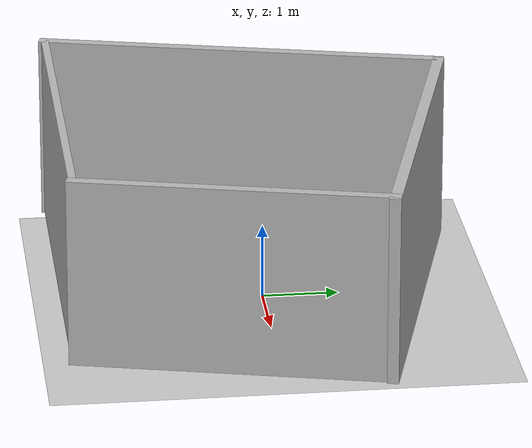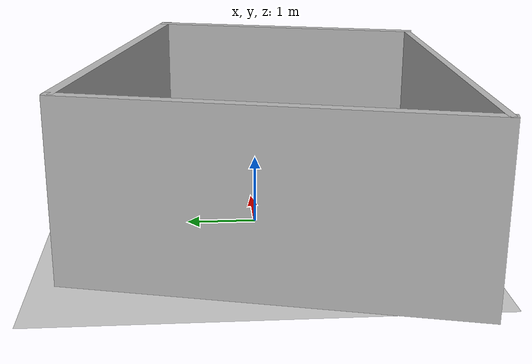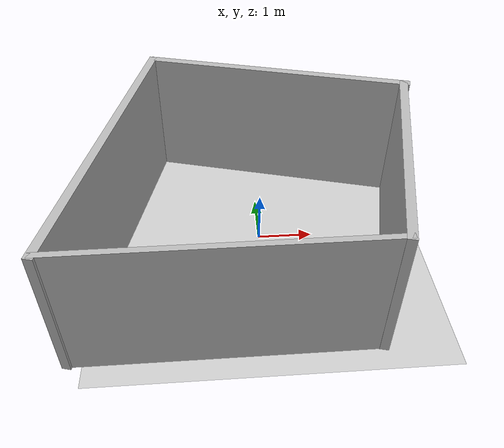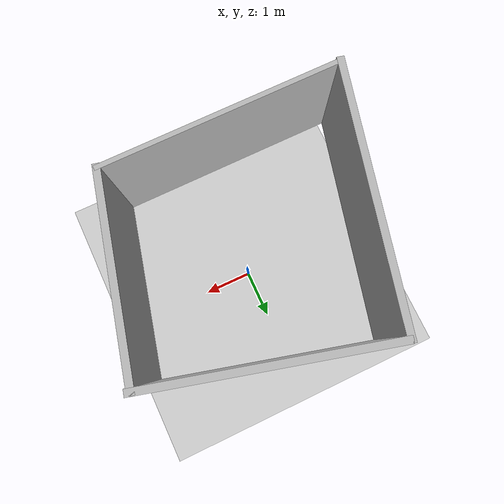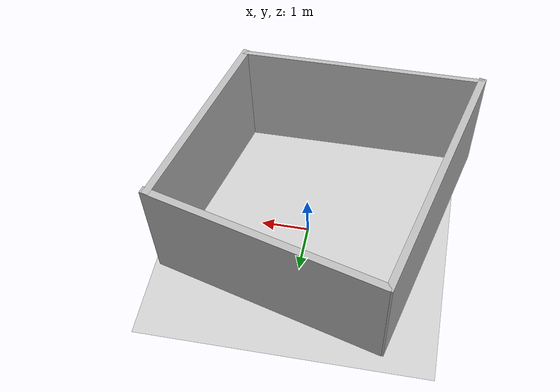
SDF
<?xml version="1.0" ?>
<sdf version="1.4">
  <world name="default">

    <include>
      <uri>model://ground_plane_textured</uri>
    </include>

    <!-- Global light source -->
    <include>
      <uri>model://sun</uri>
    </include>

    <include>
      <uri>model://unevenFourWallTextured</uri>
      <pose>-0.2 0.0 0.0 0.0 0.0 0.0</pose>
    </include>

    <!-- Focus camera on tall pendulum -->
    <gui fullscreen='0'>
      <camera name='user_camera'>
        <pose>-0.241862 -0.045901 11.828028 0.000000 1.570796 0.0</pose>
        <view_controller>orbit</view_controller>
      </camera>
    </gui>

  </world>
</sdf>

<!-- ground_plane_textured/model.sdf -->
<sdf version="1.5">
  <model name="ground_plane_textured">
    <static>true</static>
    <link name="link">
      <collision name="collision">
        <geometry>
          <plane>
            <normal>0 0 1</normal>
            <size>6 6</size>
          </plane>
        </geometry>
        <surface>
          <contact>
             <collide_bitmask>0xffff</collide_bitmask>
          </contact>
          <friction>
            <ode>
              <mu>100</mu>
              <mu2>50</mu2>
            </ode>
          </friction>
        </surface>
      </collision>
      <visual name="visual">
        <cast_shadows>false</cast_shadows>
        <geometry>
          <plane>
            <normal>0 0 1</normal>
            <size>6 6</size>
          </plane>
        </geometry>

        <material>
          <script>
            <uri>model://ground_plane_textured/materials/scripts/byu.material</uri>
            <name>BYU/ground</name>
          </script>
        </material>

      </visual>
    </link>
  </model>
</sdf>

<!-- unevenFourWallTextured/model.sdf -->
<sdf version='1.6'>
  <model name='unevenFourWallTextured'>
    <pose frame=''>1.00675 0.586158 0 0 -0 0</pose>
    <link name='Wall_12'>
      <collision name='Wall_12_Collision'>
        <geometry>
          <box>
            <size>5.1 0.1 2.5</size>
          </box>
        </geometry>
        <pose frame=''>0 0 1.25 0 -0 0</pose>
      </collision>
      <visual name='Wall_12_Visual'>
        <pose frame=''>0 0 1.25 0 -0 0</pose>
        <geometry>
          <box>
            <size>5.1 0.1 2.5</size>
          </box>
        </geometry>
        <material>
          <script>
            <uri>model://unevenFourWallTextured/materials/scripts/cardboard.material</uri>
            <name>cardboard</name>
          </script>
        </material>
        <meta>
          <layer>0</layer>
        </meta>
      </visual>
      <pose frame=''>-0.506749 -2.58616 0 0 -0 0</pose>
    </link>
    <link name='Wall_15'>
      <collision name='Wall_15_Collision'>
        <geometry>
          <box>
            <size>4.18493 0.15 2.5</size>
          </box>
        </geometry>
        <pose frame=''>0 0 1.25 0 -0 0</pose>
      </collision>
      <visual name='Wall_15_Visual'>
        <pose frame=''>0 0 1.25 0 -0 0</pose>
        <geometry>
          <box>
            <size>4.18493 0.15 2.5</size>
          </box>
        </geometry>
        <material>
          <script>
            <uri>model://unevenFourWallTextured/materials/scripts/cardboard2.material</uri>
            <name>cardboard2</name>
          </script>
        </material>
        <meta>
          <layer>0</layer>
        </meta>
      </visual>
      <pose frame=''>2.47929 -0.628116 0 0 -0 1.32749</pose>
    </link>
    <link name='Wall_16'>
      <collision name='Wall_16_Collision'>
        <geometry>
          <box>
            <size>5 0.15 2.5</size>
          </box>
        </geometry>
        <pose frame=''>0 0 1.25 0 -0 0</pose>
      </collision>
      <visual name='Wall_16_Visual'>
        <pose frame=''>0 0 1.25 0 -0 0</pose>
        <geometry>
          <box>
            <size>5 0.15 2.5</size>
          </box>
        </geometry>
        <material>
          <script>
            <uri>model://unevenFourWallTextured/materials/scripts/cardboard3.material</uri>
            <name>cardboard3</name>
          </script>
        </material>
        <meta>
          <layer>0</layer>
        </meta>
      </visual>
      <pose frame=''>0.663419 1.95756 0 0 -0 2.87979</pose>
    </link>
    <link name='Wall_17'>
      <collision name='Wall_17_Collision'>
        <geometry>
          <box>
            <size>5.47918 0.15 2.5</size>
          </box>
        </geometry>
        <pose frame=''>0 0 1.25 0 -0 0</pose>
      </collision>
      <visual name='Wall_17_Visual'>
        <pose frame=''>0 0 1.25 0 -0 0</pose>
        <geometry>
          <box>
            <size>5.47918 0.15 2.5</size>
          </box>
        </geometry>
        <material>
          <script>
            <uri>model://unevenFourWallTextured/materials/scripts/cardboard4.material</uri>
            <name>cardboard4</name>
          </script>
        </material>
        <meta>
          <layer>0</layer>
        </meta>
      </visual>
      <pose frame=''>-2.36308 -0.00048 0 0 -0 -1.81477</pose>
    </link>
    <static>1</static>
  </model>
</sdf>
